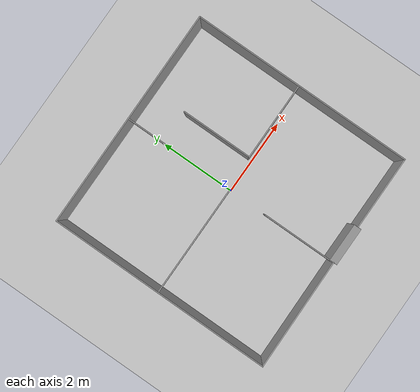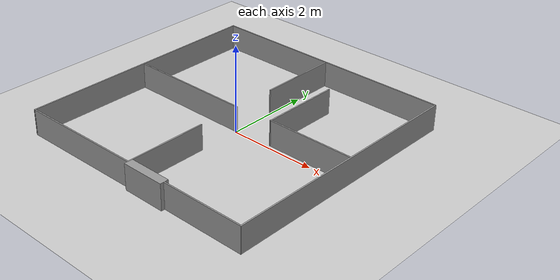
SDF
<?xml version="1.0" ?>

<sdf version="1.5">

  <world name="home-area">

    <scene>
      <ambient>0.6 0.6 0.6 1</ambient>
      <sky>
        <sunrise />
        <clouds>
          <speed>0.6</speed>
        </clouds>
      </sky>
    </scene>

    <!-- Engines: ode, bullet, simbody, dart-->
    <physics type="ode">
      <max_step_size>0.001</max_step_size>
      <real_time_factor>1</real_time_factor>
      <real_time_update_rate>1000</real_time_update_rate>
      <gravity>0 0 -9.8</gravity>
    </physics>

    <include>
      <uri>model://sun</uri>
    </include>

    <include>
      <uri>model://ground_plane</uri>
    </include>

    <model name="home-area">
      <include>
        <uri>model://home-area</uri>
        <pose>0 0 0 0 0 0</pose>
      </include>
    </model>

  </world>

</sdf>

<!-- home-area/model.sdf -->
<sdf version='1.6'>
  <model name='home-area'>
    <pose frame=''>-0.022859 -0.01849 0 0 -0 0</pose>
    <link name='Door_0'>
      <collision name='Door_0_Collision'>
        <geometry>
          <box>
            <size>1 0.2 0.6</size>
          </box>
        </geometry>
        <pose frame=''>0 0 0.3 0 -0 0</pose>
      </collision>
      <visual name='Door_0_Visual'>
        <pose frame=''>0 0 0.3 0 -0 0</pose>
        <geometry>
          <box>
            <size>1 0.2 0.6</size>
          </box>
        </geometry>
        <material>
          <script>
            <uri>file://media/materials/scripts/gazebo.material</uri>
            <name>Gazebo/Grey</name>
          </script>
        </material>
      </visual>
      <pose frame=''>0.490977 -2.89938 0 0 -0 0</pose>
    </link>
    <link name='Wall_0'>
      <collision name='Wall_0_Collision'>
        <geometry>
          <box>
            <size>5.84046 0.03 0.6</size>
          </box>
        </geometry>
        <pose frame=''>0 0 0.3 0 -0 0</pose>
      </collision>
      <visual name='Wall_0_Visual'>
        <pose frame=''>0 0 0.3 0 -0 0</pose>
        <geometry>
          <box>
            <size>5.84046 0.03 0.6</size>
          </box>
        </geometry>
        <material>
          <script>
            <uri>file://media/materials/scripts/gazebo.material</uri>
            <name>Gazebo/Grey</name>
          </script>
          <ambient>1 1 1 1</ambient>
        </material>
        <meta>
          <layer>0</layer>
        </meta>
      </visual>
      <pose frame=''>0.002085 2.92355 0 0 -0 0.002085</pose>
    </link>
    <link name='Wall_1'>
      <collision name='Wall_1_Collision'>
        <geometry>
          <box>
            <size>5.862 0.03 0.6</size>
          </box>
        </geometry>
        <pose frame=''>0 0 0.3 0 -0 0</pose>
      </collision>
      <visual name='Wall_1_Visual'>
        <pose frame=''>0 0 0.3 0 -0 0</pose>
        <geometry>
          <box>
            <size>5.862 0.03 0.6</size>
          </box>
        </geometry>
        <material>
          <script>
            <uri>file://media/materials/scripts/gazebo.material</uri>
            <name>Gazebo/Grey</name>
          </script>
          <ambient>1 1 1 1</ambient>
        </material>
        <meta>
          <layer>0</layer>
        </meta>
      </visual>
      <pose frame=''>2.91025 0.013603 0 0 -0 -1.57148</pose>
    </link>
    <link name='Wall_10'>
      <collision name='Wall_10_Collision'>
        <geometry>
          <box>
            <size>1.88 0.03 0.6</size>
          </box>
        </geometry>
        <pose frame=''>0 0 0.3 0 -0 0</pose>
      </collision>
      <visual name='Wall_10_Visual'>
        <pose frame=''>0 0 0.3 0 -0 0</pose>
        <geometry>
          <box>
            <size>1.88 0.03 0.6</size>
          </box>
        </geometry>
        <material>
          <script>
            <uri>file://media/materials/scripts/gazebo.material</uri>
            <name>Gazebo/Grey</name>
          </script>
          <ambient>1 1 1 1</ambient>
        </material>
        <meta>
          <layer>0</layer>
        </meta>
      </visual>
      <pose frame=''>0.000859 1.98349 0 0 -0 1.5708</pose>
    </link>
    <link name='Wall_12'>
      <collision name='Wall_12_Collision'>
        <geometry>
          <box>
            <size>2.03491 0.03 0.6</size>
          </box>
        </geometry>
        <pose frame=''>0 0 0.3 0 -0 0</pose>
      </collision>
      <visual name='Wall_12_Visual'>
        <pose frame=''>0 0 0.3 0 -0 0</pose>
        <geometry>
          <box>
            <size>2.03491 0.03 0.6</size>
          </box>
        </geometry>
        <material>
          <script>
            <uri>file://media/materials/scripts/gazebo.material</uri>
            <name>Gazebo/Grey</name>
          </script>
          <ambient>1 1 1 1</ambient>
        </material>
        <meta>
          <layer>0</layer>
        </meta>
      </visual>
      <pose frame=''>1.8794 0.09661 0 0 -0 -3.13972</pose>
    </link>
    <link name='Wall_13'>
      <collision name='Wall_13_Collision'>
        <geometry>
          <box>
            <size>1.88 0.03 0.6</size>
          </box>
        </geometry>
        <pose frame=''>0 0 0.3 0 -0 0</pose>
      </collision>
      <visual name='Wall_13_Visual'>
        <pose frame=''>0 0 0.3 0 -0 0</pose>
        <geometry>
          <box>
            <size>1.88 0.03 0.6</size>
          </box>
        </geometry>
        <material>
          <script>
            <uri>file://media/materials/scripts/gazebo.material</uri>
            <name>Gazebo/Grey</name>
          </script>
          <ambient>1 1 1 1</ambient>
        </material>
        <meta>
          <layer>0</layer>
        </meta>
      </visual>
      <pose frame=''>0.88071 1.01973 0 0 -0 1.5708</pose>
    </link>
    <link name='Wall_2'>
      <collision name='Wall_2_Collision'>
        <geometry>
          <box>
            <size>1.992 0.03 0.6</size>
          </box>
        </geometry>
        <pose frame=''>0 0 0.3 0 -0 0</pose>
      </collision>
      <visual name='Wall_2_Visual'>
        <pose frame=''>0 0 0.3 0 -0 0</pose>
        <geometry>
          <box>
            <size>1.992 0.03 0.6</size>
          </box>
        </geometry>
        <material>
          <script>
            <uri>file://media/materials/scripts/gazebo.material</uri>
            <name>Gazebo/Grey</name>
          </script>
          <ambient>1 1 1 1</ambient>
        </material>
        <meta>
          <layer>0</layer>
        </meta>
      </visual>
      <pose frame=''>1.92231 -2.9024 0 0 -0 3.14159</pose>
    </link>
    <link name='Wall_4'>
      <collision name='Wall_4_Collision'>
        <geometry>
          <box>
            <size>5.87701 0.03 0.6</size>
          </box>
        </geometry>
        <pose frame=''>0 0 0.3 0 -0 0</pose>
      </collision>
      <visual name='Wall_4_Visual'>
        <pose frame=''>0 0 0.3 0 -0 0</pose>
        <geometry>
          <box>
            <size>5.87701 0.03 0.6</size>
          </box>
        </geometry>
        <material>
          <script>
            <uri>file://media/materials/scripts/gazebo.material</uri>
            <name>Gazebo/Grey</name>
          </script>
          <ambient>1 1 1 1</ambient>
        </material>
        <meta>
          <layer>0</layer>
        </meta>
      </visual>
      <pose frame=''>-2.90764 -0.00601 0 0 -0 -1.57234</pose>
    </link>
    <link name='Wall_5'>
      <collision name='Wall_5_Collision'>
        <geometry>
          <box>
            <size>2.9301 0.03 0.6</size>
          </box>
        </geometry>
        <pose frame=''>0 0 0.3 0 -0 0</pose>
      </collision>
      <visual name='Wall_5_Visual'>
        <pose frame=''>0 0 0.3 0 -0 0</pose>
        <geometry>
          <box>
            <size>2.9301 0.03 0.6</size>
          </box>
        </geometry>
        <material>
          <script>
            <uri>file://media/materials/scripts/gazebo.material</uri>
            <name>Gazebo/Grey</name>
          </script>
          <ambient>1 1 1 1</ambient>
        </material>
        <meta>
          <layer>0</layer>
        </meta>
      </visual>
      <pose frame=''>-1.46214 -2.91751 0 0 -0 0.008276</pose>
    </link>
    <link name='Wall_6'>
      <collision name='Wall_6_Collision'>
        <geometry>
          <box>
            <size>1.941 0.03 0.6</size>
          </box>
        </geometry>
        <pose frame=''>0 0 0.3 0 -0 0</pose>
      </collision>
      <visual name='Wall_6_Visual'>
        <pose frame=''>0 0 0.3 0 -0 0</pose>
        <geometry>
          <box>
            <size>1.941 0.03 0.6</size>
          </box>
        </geometry>
        <material>
          <script>
            <uri>file://media/materials/scripts/gazebo.material</uri>
            <name>Gazebo/Grey</name>
          </script>
          <ambient>1 1 1 1</ambient>
        </material>
        <meta>
          <layer>0</layer>
        </meta>
      </visual>
      <pose frame=''>-0.012141 -1.95001 0 0 -0 1.5708</pose>
    </link>
    <link name='Wall_8'>
      <collision name='Wall_8_Collision'>
        <geometry>
          <box>
            <size>2.9 0.03 0.6</size>
          </box>
        </geometry>
        <pose frame=''>0 0 0.3 0 -0 0</pose>
      </collision>
      <visual name='Wall_8_Visual'>
        <pose frame=''>0 0 0.3 0 -0 0</pose>
        <geometry>
          <box>
            <size>2.9 0.03 0.6</size>
          </box>
        </geometry>
        <material>
          <script>
            <uri>file://media/materials/scripts/gazebo.material</uri>
            <name>Gazebo/Grey</name>
          </script>
          <ambient>1 1 1 1</ambient>
        </material>
        <meta>
          <layer>0</layer>
        </meta>
      </visual>
      <pose frame=''>-1.44214 0.03049 0 0 -0 3.14159</pose>
    </link>
    <static>1</static>
  </model>
</sdf>
